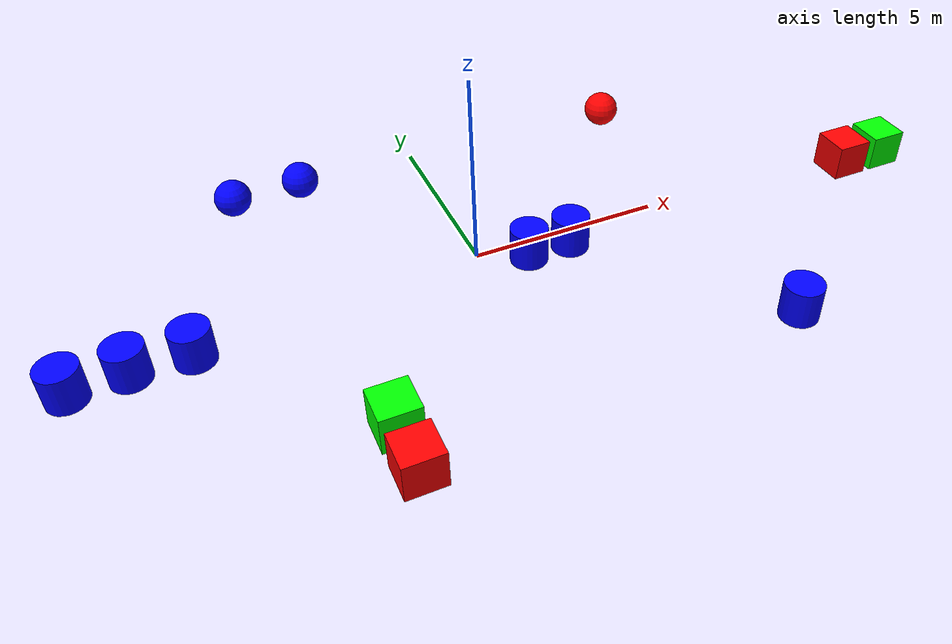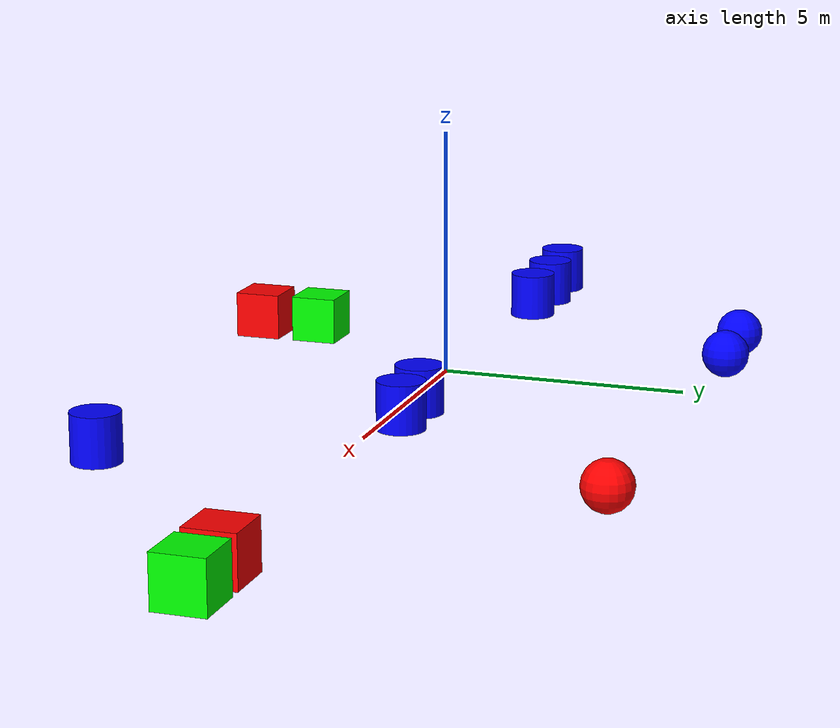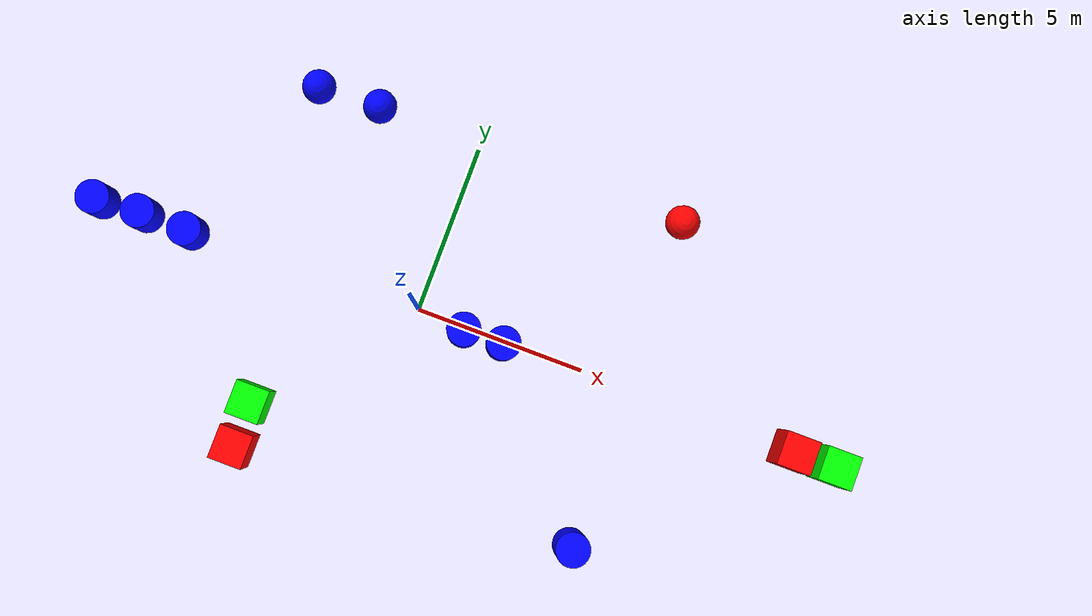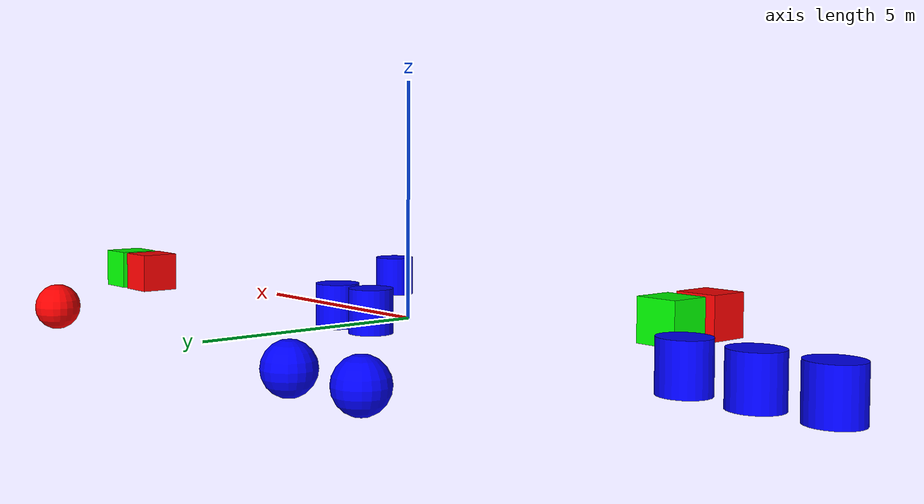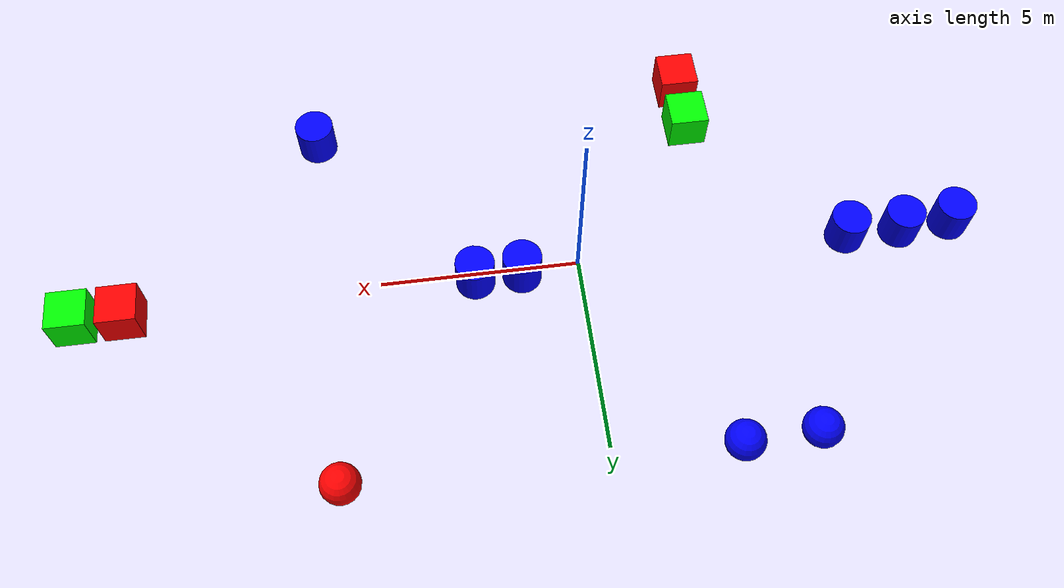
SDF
<?xml version='1.0'?>
<sdf version='1.6'>
  <model name='env7'>
    <link name='link_0'>
      <inertial>
        <mass>1</mass>
        <inertia>
          <ixx>0.145833</ixx>
          <ixy>0</ixy>
          <ixz>0</ixz>
          <iyy>0.145833</iyy>
          <iyz>0</iyz>
          <izz>0.125</izz>
        </inertia>
      </inertial>
      <pose frame=''>6.44735 -4.81604 0 0 -0 0</pose>
      <visual name='visual'>
        <pose frame=''>0 0 0 0 -0 0</pose>
        <geometry>
          <cylinder>
            <radius>0.5</radius>
            <length>1</length>
          </cylinder>
        </geometry>
        <material>
          <lighting>1</lighting>
          <script>
            <uri>file://media/materials/scripts/gazebo.material</uri>
            <name>Gazebo/Grey</name>

          </script>
            <ambient>0 0 1 1</ambient>
            <diffuse>0 0 1 1</diffuse>
            <specular>0 0 0 0</specular>
            <emissive>0 0 0 0</emissive>
        </material>
        <transparency>0</transparency>
        <cast_shadows>1</cast_shadows>
      </visual>
      <collision name='collision'>
        <laser_retro>0</laser_retro>
        <max_contacts>10</max_contacts>
        <pose frame=''>0 0 0 0 -0 0</pose>
        <geometry>
          <cylinder>
            <radius>0.5</radius>
            <length>1</length>
          </cylinder>
        </geometry>
        <surface>
          <friction>
            <ode>
              <mu>1</mu>
              <mu2>1</mu2>
              <fdir1>0 0 0</fdir1>
              <slip1>0</slip1>
              <slip2>0</slip2>
            </ode>
            <torsional>
              <coefficient>1</coefficient>
              <patch_radius>0</patch_radius>
              <surface_radius>0</surface_radius>
              <use_patch_radius>1</use_patch_radius>
              <ode>
                <slip>0</slip>
              </ode>
            </torsional>
          </friction>
          <bounce>
            <restitution_coefficient>0</restitution_coefficient>
            <threshold>1e+06</threshold>
          </bounce>
          <contact>
            <collide_without_contact>0</collide_without_contact>
            <collide_without_contact_bitmask>1</collide_without_contact_bitmask>
            <collide_bitmask>1</collide_bitmask>
            <ode>
              <soft_cfm>0</soft_cfm>
              <soft_erp>0.2</soft_erp>
              <kp>1e+13</kp>
              <kd>1</kd>
              <max_vel>0.01</max_vel>
              <min_depth>0</min_depth>
            </ode>
            <bullet>
              <split_impulse>1</split_impulse>
              <split_impulse_penetration_threshold>-0.01</split_impulse_penetration_threshold>
              <soft_cfm>0</soft_cfm>
              <soft_erp>0.2</soft_erp>
              <kp>1e+13</kp>
              <kd>1</kd>
            </bullet>
          </contact>
        </surface>
      </collision>
    </link>
    <link name='link_1'>
      <inertial>
        <mass>1</mass>
        <inertia>
          <ixx>0.166667</ixx>
          <ixy>0</ixy>
          <ixz>0</ixz>
          <iyy>0.166667</iyy>
          <iyz>0</iyz>
          <izz>0.166667</izz>
        </inertia>
      </inertial>
      <pose frame=''>11.4837 -0.06302 0 0 -0 0</pose>
      <visual name='visual'>
        <pose frame=''>0 0 0 0 -0 0</pose>
        <geometry>
          <box>
            <size>1 1 1</size>
          </box>
        </geometry>
        <material>
          <lighting>1</lighting>
          <script>
            <uri>file://media/materials/scripts/gazebo.material</uri>
            <name>Gazebo/Grey</name>
          </script>
            <ambient>1 0 0 1</ambient>
            <diffuse>1 0 0 1</diffuse>
            <specular>0 0 0 0</specular>
            <emissive>0 0 0 0</emissive>
        </material>
        <transparency>0</transparency>
        <cast_shadows>1</cast_shadows>
      </visual>
      <collision name='collision'>
        <laser_retro>0</laser_retro>
        <max_contacts>10</max_contacts>
        <pose frame=''>0 0 0 0 -0 0</pose>
        <geometry>
          <box>
            <size>1 1 1</size>
          </box>
        </geometry>
        <surface>
          <friction>
            <ode>
              <mu>1</mu>
              <mu2>1</mu2>
              <fdir1>0 0 0</fdir1>
              <slip1>0</slip1>
              <slip2>0</slip2>
            </ode>
            <torsional>
              <coefficient>1</coefficient>
              <patch_radius>0</patch_radius>
              <surface_radius>0</surface_radius>
              <use_patch_radius>1</use_patch_radius>
              <ode>
                <slip>0</slip>
              </ode>
            </torsional>
          </friction>
          <bounce>
            <restitution_coefficient>0</restitution_coefficient>
            <threshold>1e+06</threshold>
          </bounce>
          <contact>
            <collide_without_contact>0</collide_without_contact>
            <collide_without_contact_bitmask>1</collide_without_contact_bitmask>
            <collide_bitmask>1</collide_bitmask>
            <ode>
              <soft_cfm>0</soft_cfm>
              <soft_erp>0.2</soft_erp>
              <kp>1e+13</kp>
              <kd>1</kd>
              <max_vel>0.01</max_vel>
              <min_depth>0</min_depth>
            </ode>
            <bullet>
              <split_impulse>1</split_impulse>
              <split_impulse_penetration_threshold>-0.01</split_impulse_penetration_threshold>
              <soft_cfm>0</soft_cfm>
              <soft_erp>0.2</soft_erp>
              <kp>1e+13</kp>
              <kd>1</kd>
            </bullet>
          </contact>
        </surface>
      </collision>
    </link>
    <link name='link_1_clone'>
      <inertial>
        <mass>1</mass>
        <inertia>
          <ixx>0.166667</ixx>
          <ixy>0</ixy>
          <ixz>0</ixz>
          <iyy>0.166667</iyy>
          <iyz>0</iyz>
          <izz>0.166667</izz>
        </inertia>
      </inertial>
      <pose frame=''>12.7015 -0.059103 0 0 -0 0</pose>
      <visual name='visual'>
        <pose frame=''>0 0 0 0 -0 0</pose>
        <geometry>
          <box>
            <size>1 1 1</size>
          </box>
        </geometry>
        <material>
          <lighting>1</lighting>
          <script>
            <uri>file://media/materials/scripts/gazebo.material</uri>
            <name>Gazebo/Grey</name>

          </script>
            <ambient>0 1 0 1</ambient>
            <diffuse>0 1 0 1</diffuse>
            <specular>0 0 0 0</specular>
            <emissive>0 0 0 0</emissive>
          <shader type='pixel'/>
        </material>
        <transparency>0</transparency>
        <cast_shadows>1</cast_shadows>
      </visual>
      <collision name='collision'>
        <laser_retro>0</laser_retro>
        <max_contacts>10</max_contacts>
        <pose frame=''>0 0 0 0 -0 0</pose>
        <geometry>
          <box>
            <size>1 1 1</size>
          </box>
        </geometry>
        <surface>
          <friction>
            <ode>
              <mu>1</mu>
              <mu2>1</mu2>
              <fdir1>0 0 0</fdir1>
              <slip1>0</slip1>
              <slip2>0</slip2>
            </ode>
            <torsional>
              <coefficient>1</coefficient>
              <patch_radius>0</patch_radius>
              <surface_radius>0</surface_radius>
              <use_patch_radius>1</use_patch_radius>
              <ode>
                <slip>0</slip>
              </ode>
            </torsional>
          </friction>
          <bounce>
            <restitution_coefficient>0</restitution_coefficient>
            <threshold>1e+06</threshold>
          </bounce>
          <contact>
            <collide_without_contact>0</collide_without_contact>
            <collide_without_contact_bitmask>1</collide_without_contact_bitmask>
            <collide_bitmask>1</collide_bitmask>
            <ode>
              <soft_cfm>0</soft_cfm>
              <soft_erp>0.2</soft_erp>
              <kp>1e+13</kp>
              <kd>1</kd>
              <max_vel>0.01</max_vel>
              <min_depth>0</min_depth>
            </ode>
            <bullet>
              <split_impulse>1</split_impulse>
              <split_impulse_penetration_threshold>-0.01</split_impulse_penetration_threshold>
              <soft_cfm>0</soft_cfm>
              <soft_erp>0.2</soft_erp>
              <kp>1e+13</kp>
              <kd>1</kd>
            </bullet>
          </contact>
        </surface>
      </collision>
    </link>
    <link name='link_2'>
      <inertial>
        <mass>1</mass>
        <inertia>
          <ixx>0.1</ixx>
          <ixy>0</ixy>
          <ixz>0</ixz>
          <iyy>0.1</iyy>
          <iyz>0</iyz>
          <izz>0.1</izz>
        </inertia>
      </inertial>
      <pose frame=''>6.29344 5.07822 0 0 -0 0</pose>
      <visual name='visual'>
        <pose frame=''>0 0 0 0 -0 0</pose>
        <geometry>
          <sphere>
            <radius>0.5</radius>
          </sphere>
        </geometry>
        <material>
          <lighting>1</lighting>
          <script>
            <uri>file://media/materials/scripts/gazebo.material</uri>
            <name>Gazebo/Grey</name>

          </script>
            <ambient>1 0 0 1</ambient>
            <diffuse>1 0 0 1</diffuse>
            <specular>0 0 0 0</specular>
            <emissive>0 0 0 0</emissive>
        </material>
        <transparency>0</transparency>
        <cast_shadows>1</cast_shadows>
      </visual>
      <collision name='collision'>
        <laser_retro>0</laser_retro>
        <max_contacts>10</max_contacts>
        <pose frame=''>0 0 0 0 -0 0</pose>
        <geometry>
          <sphere>
            <radius>0.5</radius>
          </sphere>
        </geometry>
        <surface>
          <friction>
            <ode>
              <mu>1</mu>
              <mu2>1</mu2>
              <fdir1>0 0 0</fdir1>
              <slip1>0</slip1>
              <slip2>0</slip2>
            </ode>
            <torsional>
              <coefficient>1</coefficient>
              <patch_radius>0</patch_radius>
              <surface_radius>0</surface_radius>
              <use_patch_radius>1</use_patch_radius>
              <ode>
                <slip>0</slip>
              </ode>
            </torsional>
          </friction>
          <bounce>
            <restitution_coefficient>0</restitution_coefficient>
            <threshold>1e+06</threshold>
          </bounce>
          <contact>
            <collide_without_contact>0</collide_without_contact>
            <collide_without_contact_bitmask>1</collide_without_contact_bitmask>
            <collide_bitmask>1</collide_bitmask>
            <ode>
              <soft_cfm>0</soft_cfm>
              <soft_erp>0.2</soft_erp>
              <kp>1e+13</kp>
              <kd>1</kd>
              <max_vel>0.01</max_vel>
              <min_depth>0</min_depth>
            </ode>
            <bullet>
              <split_impulse>1</split_impulse>
              <split_impulse_penetration_threshold>-0.01</split_impulse_penetration_threshold>
              <soft_cfm>0</soft_cfm>
              <soft_erp>0.2</soft_erp>
              <kp>1e+13</kp>
              <kd>1</kd>
            </bullet>
          </contact>
        </surface>
      </collision>
    </link>
    <link name='link_3'>
      <inertial>
        <mass>1</mass>
        <inertia>
          <ixx>0.145833</ixx>
          <ixy>0</ixy>
          <ixz>0</ixz>
          <iyy>0.145833</iyy>
          <iyz>0</iyz>
          <izz>0.125</izz>
        </inertia>
      </inertial>
      <pose frame=''>1.42244 -0.097254 0 0 -0 0</pose>
      <visual name='visual'>
        <pose frame=''>0 0 0 0 -0 0</pose>
        <geometry>
          <cylinder>
            <radius>0.5</radius>
            <length>1</length>
          </cylinder>
        </geometry>
        <material>
          <lighting>1</lighting>
          <script>
            <uri>file://media/materials/scripts/gazebo.material</uri>
            <name>Gazebo/Grey</name>

          </script>
            <ambient>0 0 1 1</ambient>
            <diffuse>0 0 1 1</diffuse>
            <specular>0 0 0 0</specular>
            <emissive>0 0 0 0</emissive>
        </material>
        <transparency>0</transparency>
        <cast_shadows>1</cast_shadows>
      </visual>
      <collision name='collision'>
        <laser_retro>0</laser_retro>
        <max_contacts>10</max_contacts>
        <pose frame=''>0 0 0 0 -0 0</pose>
        <geometry>
          <cylinder>
            <radius>0.5</radius>
            <length>1</length>
          </cylinder>
        </geometry>
        <surface>
          <friction>
            <ode>
              <mu>1</mu>
              <mu2>1</mu2>
              <fdir1>0 0 0</fdir1>
              <slip1>0</slip1>
              <slip2>0</slip2>
            </ode>
            <torsional>
              <coefficient>1</coefficient>
              <patch_radius>0</patch_radius>
              <surface_radius>0</surface_radius>
              <use_patch_radius>1</use_patch_radius>
              <ode>
                <slip>0</slip>
              </ode>
            </torsional>
          </friction>
          <bounce>
            <restitution_coefficient>0</restitution_coefficient>
            <threshold>1e+06</threshold>
          </bounce>
          <contact>
            <collide_without_contact>0</collide_without_contact>
            <collide_without_contact_bitmask>1</collide_without_contact_bitmask>
            <collide_bitmask>1</collide_bitmask>
            <ode>
              <soft_cfm>0</soft_cfm>
              <soft_erp>0.2</soft_erp>
              <kp>1e+13</kp>
              <kd>1</kd>
              <max_vel>0.01</max_vel>
              <min_depth>0</min_depth>
            </ode>
            <bullet>
              <split_impulse>1</split_impulse>
              <split_impulse_penetration_threshold>-0.01</split_impulse_penetration_threshold>
              <soft_cfm>0</soft_cfm>
              <soft_erp>0.2</soft_erp>
              <kp>1e+13</kp>
              <kd>1</kd>
            </bullet>
          </contact>
        </surface>
      </collision>
    </link>
    <link name='link_4'>
      <inertial>
        <mass>1</mass>
        <inertia>
          <ixx>0.145833</ixx>
          <ixy>0</ixy>
          <ixz>0</ixz>
          <iyy>0.145833</iyy>
          <iyz>0</iyz>
          <izz>0.125</izz>
        </inertia>
      </inertial>
      <pose frame=''>2.62305 -0.068637 0 0 -0 0</pose>
      <visual name='visual'>
        <pose frame=''>0 0 0 0 -0 0</pose>
        <geometry>
          <cylinder>
            <radius>0.5</radius>
            <length>1</length>
          </cylinder>
        </geometry>
        <material>
          <lighting>1</lighting>
          <script>
            <uri>file://media/materials/scripts/gazebo.material</uri>
            <name>Gazebo/Grey</name>

          </script>
            <ambient>0 0 1 1</ambient>
            <diffuse>0 0 1 1</diffuse>
            <specular>0 0 0 0</specular>
            <emissive>0 0 0 0</emissive>
        </material>
        <transparency>0</transparency>
        <cast_shadows>1</cast_shadows>
      </visual>
      <collision name='collision'>
        <laser_retro>0</laser_retro>
        <max_contacts>10</max_contacts>
        <pose frame=''>0 0 0 0 -0 0</pose>
        <geometry>
          <cylinder>
            <radius>0.5</radius>
            <length>1</length>
          </cylinder>
        </geometry>
        <surface>
          <friction>
            <ode>
              <mu>1</mu>
              <mu2>1</mu2>
              <fdir1>0 0 0</fdir1>
              <slip1>0</slip1>
              <slip2>0</slip2>
            </ode>
            <torsional>
              <coefficient>1</coefficient>
              <patch_radius>0</patch_radius>
              <surface_radius>0</surface_radius>
              <use_patch_radius>1</use_patch_radius>
              <ode>
                <slip>0</slip>
              </ode>
            </torsional>
          </friction>
          <bounce>
            <restitution_coefficient>0</restitution_coefficient>
            <threshold>1e+06</threshold>
          </bounce>
          <contact>
            <collide_without_contact>0</collide_without_contact>
            <collide_without_contact_bitmask>1</collide_without_contact_bitmask>
            <collide_bitmask>1</collide_bitmask>
            <ode>
              <soft_cfm>0</soft_cfm>
              <soft_erp>0.2</soft_erp>
              <kp>1e+13</kp>
              <kd>1</kd>
              <max_vel>0.01</max_vel>
              <min_depth>0</min_depth>
            </ode>
            <bullet>
              <split_impulse>1</split_impulse>
              <split_impulse_penetration_threshold>-0.01</split_impulse_penetration_threshold>
              <soft_cfm>0</soft_cfm>
              <soft_erp>0.2</soft_erp>
              <kp>1e+13</kp>
              <kd>1</kd>
            </bullet>
          </contact>
        </surface>
      </collision>
    </link>
    <link name='link_5'>
      <inertial>
        <mass>1</mass>
        <inertia>
          <ixx>0.166667</ixx>
          <ixy>0</ixy>
          <ixz>0</ixz>
          <iyy>0.166667</iyy>
          <iyz>0</iyz>
          <izz>0.166667</izz>
        </inertia>
      </inertial>
      <pose frame=''>-3.57385 -5.50452 0 0 -0 0</pose>
      <visual name='visual'>
        <pose frame=''>0 0 0 0 -0 0</pose>
        <geometry>
          <box>
            <size>1 1 1</size>
          </box>
        </geometry>
        <material>
          <lighting>1</lighting>
          <script>
            <uri>file://media/materials/scripts/gazebo.material</uri>
            <name>Gazebo/Grey</name>

          </script>
              <ambient>1 0 0 1</ambient>
            <diffuse>1 0 0 1</diffuse>
            <specular>0 0 0 0</specular>
            <emissive>0 0 0 0</emissive>
        </material>
        <transparency>0</transparency>
        <cast_shadows>1</cast_shadows>
      </visual>
      <collision name='collision'>
        <laser_retro>0</laser_retro>
        <max_contacts>10</max_contacts>
        <pose frame=''>0 0 0 0 -0 0</pose>
        <geometry>
          <box>
            <size>1 1 1</size>
          </box>
        </geometry>
        <surface>
          <friction>
            <ode>
              <mu>1</mu>
              <mu2>1</mu2>
              <fdir1>0 0 0</fdir1>
              <slip1>0</slip1>
              <slip2>0</slip2>
            </ode>
            <torsional>
              <coefficient>1</coefficient>
              <patch_radius>0</patch_radius>
              <surface_radius>0</surface_radius>
              <use_patch_radius>1</use_patch_radius>
              <ode>
                <slip>0</slip>
              </ode>
            </torsional>
          </friction>
          <bounce>
            <restitution_coefficient>0</restitution_coefficient>
            <threshold>1e+06</threshold>
          </bounce>
          <contact>
            <collide_without_contact>0</collide_without_contact>
            <collide_without_contact_bitmask>1</collide_without_contact_bitmask>
            <collide_bitmask>1</collide_bitmask>
            <ode>
              <soft_cfm>0</soft_cfm>
              <soft_erp>0.2</soft_erp>
              <kp>1e+13</kp>
              <kd>1</kd>
              <max_vel>0.01</max_vel>
              <min_depth>0</min_depth>
            </ode>
            <bullet>
              <split_impulse>1</split_impulse>
              <split_impulse_penetration_threshold>-0.01</split_impulse_penetration_threshold>
              <soft_cfm>0</soft_cfm>
              <soft_erp>0.2</soft_erp>
              <kp>1e+13</kp>
              <kd>1</kd>
            </bullet>
          </contact>
        </surface>
      </collision>
    </link>
    <link name='link_5_clone'>
      <inertial>
        <mass>1</mass>
        <inertia>
          <ixx>0.166667</ixx>
          <ixy>0</ixy>
          <ixz>0</ixz>
          <iyy>0.166667</iyy>
          <iyz>0</iyz>
          <izz>0.166667</izz>
        </inertia>
      </inertial>
      <pose frame=''>-3.59557 -4.17003 0 0 -0 0</pose>
      <visual name='visual'>
        <pose frame=''>0 0 0 0 -0 0</pose>
        <geometry>
          <box>
            <size>1 1 1</size>
          </box>
        </geometry>
        <material>
          <lighting>1</lighting>
          <script>
            <uri>file://media/materials/scripts/gazebo.material</uri>
            <name>Gazebo/Grey</name>

          </script>
            <ambient>0 1 0 1</ambient>
            <diffuse>0 1 0 1</diffuse>
            <specular>0 0 0 0</specular>
            <emissive>0 0 0 0</emissive>
          <shader type='pixel'/>
        </material>
        <transparency>0</transparency>
        <cast_shadows>1</cast_shadows>
      </visual>
      <collision name='collision'>
        <laser_retro>0</laser_retro>
        <max_contacts>10</max_contacts>
        <pose frame=''>0 0 0 0 -0 0</pose>
        <geometry>
          <box>
            <size>1 1 1</size>
          </box>
        </geometry>
        <surface>
          <friction>
            <ode>
              <mu>1</mu>
              <mu2>1</mu2>
              <fdir1>0 0 0</fdir1>
              <slip1>0</slip1>
              <slip2>0</slip2>
            </ode>
            <torsional>
              <coefficient>1</coefficient>
              <patch_radius>0</patch_radius>
              <surface_radius>0</surface_radius>
              <use_patch_radius>1</use_patch_radius>
              <ode>
                <slip>0</slip>
              </ode>
            </torsional>
          </friction>
          <bounce>
            <restitution_coefficient>0</restitution_coefficient>
            <threshold>1e+06</threshold>
          </bounce>
          <contact>
            <collide_without_contact>0</collide_without_contact>
            <collide_without_contact_bitmask>1</collide_without_contact_bitmask>
            <collide_bitmask>1</collide_bitmask>
            <ode>
              <soft_cfm>0</soft_cfm>
              <soft_erp>0.2</soft_erp>
              <kp>1e+13</kp>
              <kd>1</kd>
              <max_vel>0.01</max_vel>
              <min_depth>0</min_depth>
            </ode>
            <bullet>
              <split_impulse>1</split_impulse>
              <split_impulse_penetration_threshold>-0.01</split_impulse_penetration_threshold>
              <soft_cfm>0</soft_cfm>
              <soft_erp>0.2</soft_erp>
              <kp>1e+13</kp>
              <kd>1</kd>
            </bullet>
          </contact>
        </surface>
      </collision>
    </link>
    <link name='link_6'>
      <inertial>
        <mass>1</mass>
        <inertia>
          <ixx>0.145833</ixx>
          <ixy>0</ixy>
          <ixz>0</ixz>
          <iyy>0.145833</iyy>
          <iyz>0</iyz>
          <izz>0.125</izz>
        </inertia>
      </inertial>
      <pose frame=''>-9.90465 -0.257189 0 0 -0 0</pose>
      <visual name='visual'>
        <pose frame=''>0 0 0 0 -0 0</pose>
        <geometry>
          <cylinder>
            <radius>0.5</radius>
            <length>1</length>
          </cylinder>
        </geometry>
        <material>
          <lighting>1</lighting>
          <script>
            <uri>file://media/materials/scripts/gazebo.material</uri>
            <name>Gazebo/Grey</name>

          </script>
            <ambient>0 0 1 1</ambient>
            <diffuse>0 0 1 1</diffuse>
            <specular>0 0 0 0</specular>
            <emissive>0 0 0 0</emissive>
        </material>
        <transparency>0</transparency>
        <cast_shadows>1</cast_shadows>
      </visual>
      <collision name='collision'>
        <laser_retro>0</laser_retro>
        <max_contacts>10</max_contacts>
        <pose frame=''>0 0 0 0 -0 0</pose>
        <geometry>
          <cylinder>
            <radius>0.5</radius>
            <length>1</length>
          </cylinder>
        </geometry>
        <surface>
          <friction>
            <ode>
              <mu>1</mu>
              <mu2>1</mu2>
              <fdir1>0 0 0</fdir1>
              <slip1>0</slip1>
              <slip2>0</slip2>
            </ode>
            <torsional>
              <coefficient>1</coefficient>
              <patch_radius>0</patch_radius>
              <surface_radius>0</surface_radius>
              <use_patch_radius>1</use_patch_radius>
              <ode>
                <slip>0</slip>
              </ode>
            </torsional>
          </friction>
          <bounce>
            <restitution_coefficient>0</restitution_coefficient>
            <threshold>1e+06</threshold>
          </bounce>
          <contact>
            <collide_without_contact>0</collide_without_contact>
            <collide_without_contact_bitmask>1</collide_without_contact_bitmask>
            <collide_bitmask>1</collide_bitmask>
            <ode>
              <soft_cfm>0</soft_cfm>
              <soft_erp>0.2</soft_erp>
              <kp>1e+13</kp>
              <kd>1</kd>
              <max_vel>0.01</max_vel>
              <min_depth>0</min_depth>
            </ode>
            <bullet>
              <split_impulse>1</split_impulse>
              <split_impulse_penetration_threshold>-0.01</split_impulse_penetration_threshold>
              <soft_cfm>0</soft_cfm>
              <soft_erp>0.2</soft_erp>
              <kp>1e+13</kp>
              <kd>1</kd>
            </bullet>
          </contact>
        </surface>
      </collision>
    </link>
    <link name='link_6_clone'>
      <inertial>
        <mass>1</mass>
        <inertia>
          <ixx>0.145833</ixx>
          <ixy>0</ixy>
          <ixz>0</ixz>
          <iyy>0.145833</iyy>
          <iyz>0</iyz>
          <izz>0.125</izz>
        </inertia>
      </inertial>
      <pose frame=''>-8.53894 -0.185477 0 0 -0 0</pose>
      <visual name='visual'>
        <pose frame=''>0 0 0 0 -0 0</pose>
        <geometry>
          <cylinder>
            <radius>0.5</radius>
            <length>1</length>
          </cylinder>
        </geometry>
        <material>
          <lighting>1</lighting>
          <script>
            <uri>file://media/materials/scripts/gazebo.material</uri>
            <name>Gazebo/Grey</name>

          </script>
            <ambient>0 0 1 1</ambient>
            <diffuse>0 0 1 1</diffuse>
            <specular>0 0 0 0</specular>
            <emissive>0 0 0 0</emissive>
          <shader type='pixel'/>
        </material>
        <transparency>0</transparency>
        <cast_shadows>1</cast_shadows>
      </visual>
      <collision name='collision'>
        <laser_retro>0</laser_retro>
        <max_contacts>10</max_contacts>
        <pose frame=''>0 0 0 0 -0 0</pose>
        <geometry>
          <cylinder>
            <radius>0.5</radius>
            <length>1</length>
          </cylinder>
        </geometry>
        <surface>
          <friction>
            <ode>
              <mu>1</mu>
              <mu2>1</mu2>
              <fdir1>0 0 0</fdir1>
              <slip1>0</slip1>
              <slip2>0</slip2>
            </ode>
            <torsional>
              <coefficient>1</coefficient>
              <patch_radius>0</patch_radius>
              <surface_radius>0</surface_radius>
              <use_patch_radius>1</use_patch_radius>
              <ode>
                <slip>0</slip>
              </ode>
            </torsional>
          </friction>
          <bounce>
            <restitution_coefficient>0</restitution_coefficient>
            <threshold>1e+06</threshold>
          </bounce>
          <contact>
            <collide_without_contact>0</collide_without_contact>
            <collide_without_contact_bitmask>1</collide_without_contact_bitmask>
            <collide_bitmask>1</collide_bitmask>
            <ode>
              <soft_cfm>0</soft_cfm>
              <soft_erp>0.2</soft_erp>
              <kp>1e+13</kp>
              <kd>1</kd>
              <max_vel>0.01</max_vel>
              <min_depth>0</min_depth>
            </ode>
            <bullet>
              <split_impulse>1</split_impulse>
              <split_impulse_penetration_threshold>-0.01</split_impulse_penetration_threshold>
              <soft_cfm>0</soft_cfm>
              <soft_erp>0.2</soft_erp>
              <kp>1e+13</kp>
              <kd>1</kd>
            </bullet>
          </contact>
        </surface>
      </collision>
    </link>
    <link name='link_6_clone_0'>
      <inertial>
        <mass>1</mass>
        <inertia>
          <ixx>0.145833</ixx>
          <ixy>0</ixy>
          <ixz>0</ixz>
          <iyy>0.145833</iyy>
          <iyz>0</iyz>
          <izz>0.125</izz>
        </inertia>
      </inertial>
      <pose frame=''>-7.10077 -0.199008 0 0 -0 0</pose>
      <visual name='visual'>
        <pose frame=''>0 0 0 0 -0 0</pose>
        <geometry>
          <cylinder>
            <radius>0.5</radius>
            <length>1</length>
          </cylinder>
        </geometry>
        <material>
          <lighting>1</lighting>
          <script>
            <uri>file://media/materials/scripts/gazebo.material</uri>
            <name>Gazebo/Grey</name>
          </script>
            <ambient>0 0 1 1</ambient>
            <diffuse>0 0 1 1</diffuse>
            <specular>0 0 0 0</specular>
            <emissive>0 0 0 0</emissive>
          <shader type='pixel'/>
        </material>
        <transparency>0</transparency>
        <cast_shadows>1</cast_shadows>
      </visual>
      <collision name='collision'>
        <laser_retro>0</laser_retro>
        <max_contacts>10</max_contacts>
        <pose frame=''>0 0 0 0 -0 0</pose>
        <geometry>
          <cylinder>
            <radius>0.5</radius>
            <length>1</length>
          </cylinder>
        </geometry>
        <surface>
          <friction>
            <ode>
              <mu>1</mu>
              <mu2>1</mu2>
              <fdir1>0 0 0</fdir1>
              <slip1>0</slip1>
              <slip2>0</slip2>
            </ode>
            <torsional>
              <coefficient>1</coefficient>
              <patch_radius>0</patch_radius>
              <surface_radius>0</surface_radius>
              <use_patch_radius>1</use_patch_radius>
              <ode>
                <slip>0</slip>
              </ode>
            </torsional>
          </friction>
          <bounce>
            <restitution_coefficient>0</restitution_coefficient>
            <threshold>1e+06</threshold>
          </bounce>
          <contact>
            <collide_without_contact>0</collide_without_contact>
            <collide_without_contact_bitmask>1</collide_without_contact_bitmask>
            <collide_bitmask>1</collide_bitmask>
            <ode>
              <soft_cfm>0</soft_cfm>
              <soft_erp>0.2</soft_erp>
              <kp>1e+13</kp>
              <kd>1</kd>
              <max_vel>0.01</max_vel>
              <min_depth>0</min_depth>
            </ode>
            <bullet>
              <split_impulse>1</split_impulse>
              <split_impulse_penetration_threshold>-0.01</split_impulse_penetration_threshold>
              <soft_cfm>0</soft_cfm>
              <soft_erp>0.2</soft_erp>
              <kp>1e+13</kp>
              <kd>1</kd>
            </bullet>
          </contact>
        </surface>
      </collision>
    </link>
    <link name='link_7'>
      <inertial>
        <mass>1</mass>
        <inertia>
          <ixx>0.1</ixx>
          <ixy>0</ixy>
          <ixz>0</ixz>
          <iyy>0.1</iyy>
          <iyz>0</iyz>
          <izz>0.1</izz>
        </inertia>
      </inertial>
      <pose frame=''>-5.07163 5.13155 0 0 -0 0</pose>
      <visual name='visual'>
        <pose frame=''>0 0 0 0 -0 0</pose>
        <geometry>
          <sphere>
            <radius>0.5</radius>
          </sphere>
        </geometry>
        <material>
          <lighting>1</lighting>
          <script>
            <uri>file://media/materials/scripts/gazebo.material</uri>
            <name>Gazebo/Grey</name>
          </script>
            <ambient>0 0 1 1</ambient>
            <diffuse>0 0 1 1</diffuse>
            <specular>0 0 0 0</specular>
            <emissive>0 0 0 0</emissive>
        </material>
        <transparency>0</transparency>
        <cast_shadows>1</cast_shadows>
      </visual>
      <collision name='collision'>
        <laser_retro>0</laser_retro>
        <max_contacts>10</max_contacts>
        <pose frame=''>0 0 0 0 -0 0</pose>
        <geometry>
          <sphere>
            <radius>0.5</radius>
          </sphere>
        </geometry>
        <surface>
          <friction>
            <ode>
              <mu>1</mu>
              <mu2>1</mu2>
              <fdir1>0 0 0</fdir1>
              <slip1>0</slip1>
              <slip2>0</slip2>
            </ode>
            <torsional>
              <coefficient>1</coefficient>
              <patch_radius>0</patch_radius>
              <surface_radius>0</surface_radius>
              <use_patch_radius>1</use_patch_radius>
              <ode>
                <slip>0</slip>
              </ode>
            </torsional>
          </friction>
          <bounce>
            <restitution_coefficient>0</restitution_coefficient>
            <threshold>1e+06</threshold>
          </bounce>
          <contact>
            <collide_without_contact>0</collide_without_contact>
            <collide_without_contact_bitmask>1</collide_without_contact_bitmask>
            <collide_bitmask>1</collide_bitmask>
            <ode>
              <soft_cfm>0</soft_cfm>
              <soft_erp>0.2</soft_erp>
              <kp>1e+13</kp>
              <kd>1</kd>
              <max_vel>0.01</max_vel>
              <min_depth>0</min_depth>
            </ode>
            <bullet>
              <split_impulse>1</split_impulse>
              <split_impulse_penetration_threshold>-0.01</split_impulse_penetration_threshold>
              <soft_cfm>0</soft_cfm>
              <soft_erp>0.2</soft_erp>
              <kp>1e+13</kp>
              <kd>1</kd>
            </bullet>
          </contact>
        </surface>
      </collision>
    </link>
    <link name='link_7_clone'>
      <inertial>
        <mass>1</mass>
        <inertia>
          <ixx>0.1</ixx>
          <ixy>0</ixy>
          <ixz>0</ixz>
          <iyy>0.1</iyy>
          <iyz>0</iyz>
          <izz>0.1</izz>
        </inertia>
      </inertial>
      <pose frame=''>-3.1861 5.21051 0 0 -0 0</pose>
      <visual name='visual'>
        <pose frame=''>0 0 0 0 -0 0</pose>
        <geometry>
          <sphere>
            <radius>0.5</radius>
          </sphere>
        </geometry>
        <material>
          <lighting>1</lighting>
          <script>
            <uri>file://media/materials/scripts/gazebo.material</uri>
            <name>Gazebo/Grey</name>
          </script>
            <ambient>0 0 1 1</ambient>
            <diffuse>0 0 1 1</diffuse>
            <specular>0 0 0 0</specular>
            <emissive>0 0 0 0</emissive>
          <shader type='pixel'/>
        </material>
        <transparency>0</transparency>
        <cast_shadows>1</cast_shadows>
      </visual>
      <collision name='collision'>
        <laser_retro>0</laser_retro>
        <max_contacts>10</max_contacts>
        <pose frame=''>0 0 0 0 -0 0</pose>
        <geometry>
          <sphere>
            <radius>0.5</radius>
          </sphere>
        </geometry>
        <surface>
          <friction>
            <ode>
              <mu>1</mu>
              <mu2>1</mu2>
              <fdir1>0 0 0</fdir1>
              <slip1>0</slip1>
              <slip2>0</slip2>
            </ode>
            <torsional>
              <coefficient>1</coefficient>
              <patch_radius>0</patch_radius>
              <surface_radius>0</surface_radius>
              <use_patch_radius>1</use_patch_radius>
              <ode>
                <slip>0</slip>
              </ode>
            </torsional>
          </friction>
          <bounce>
            <restitution_coefficient>0</restitution_coefficient>
            <threshold>1e+06</threshold>
          </bounce>
          <contact>
            <collide_without_contact>0</collide_without_contact>
            <collide_without_contact_bitmask>1</collide_without_contact_bitmask>
            <collide_bitmask>1</collide_bitmask>
            <ode>
              <soft_cfm>0</soft_cfm>
              <soft_erp>0.2</soft_erp>
              <kp>1e+13</kp>
              <kd>1</kd>
              <max_vel>0.01</max_vel>
              <min_depth>0</min_depth>
            </ode>
            <bullet>
              <split_impulse>1</split_impulse>
              <split_impulse_penetration_threshold>-0.01</split_impulse_penetration_threshold>
              <soft_cfm>0</soft_cfm>
              <soft_erp>0.2</soft_erp>
              <kp>1e+13</kp>
              <kd>1</kd>
            </bullet>
          </contact>
        </surface>
      </collision>
    </link>
    <static>0</static>
    <allow_auto_disable>1</allow_auto_disable>
  </model>
</sdf>
